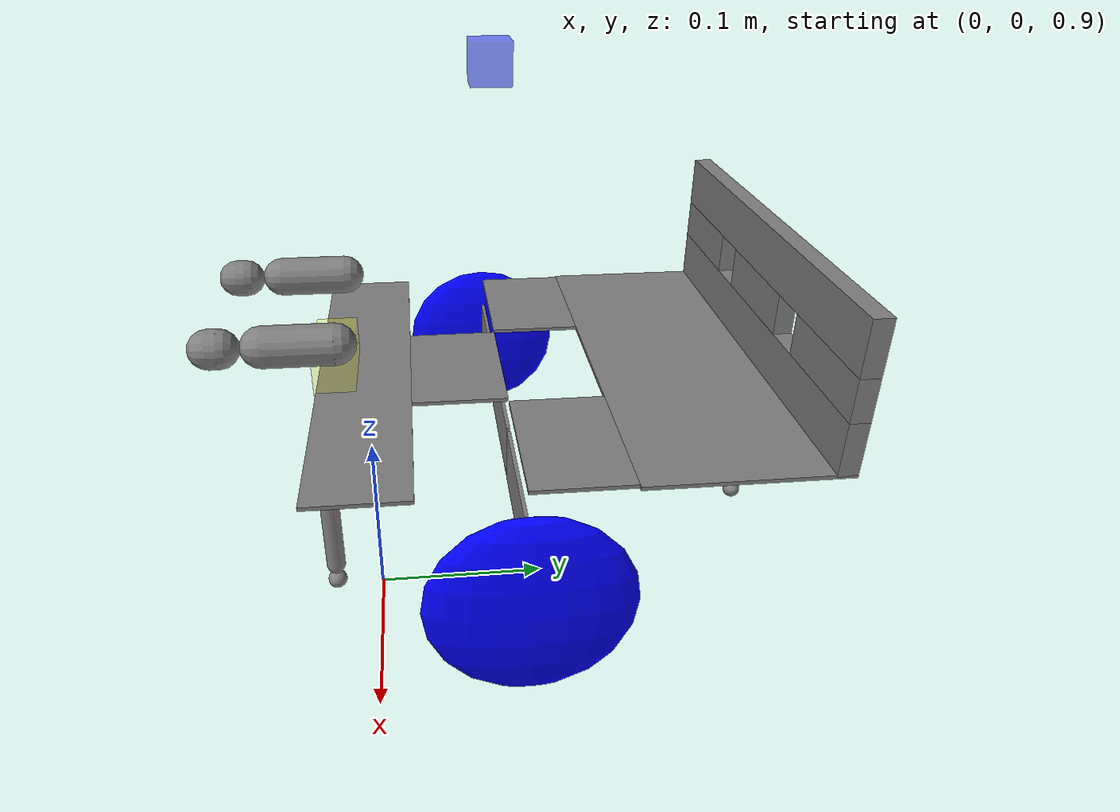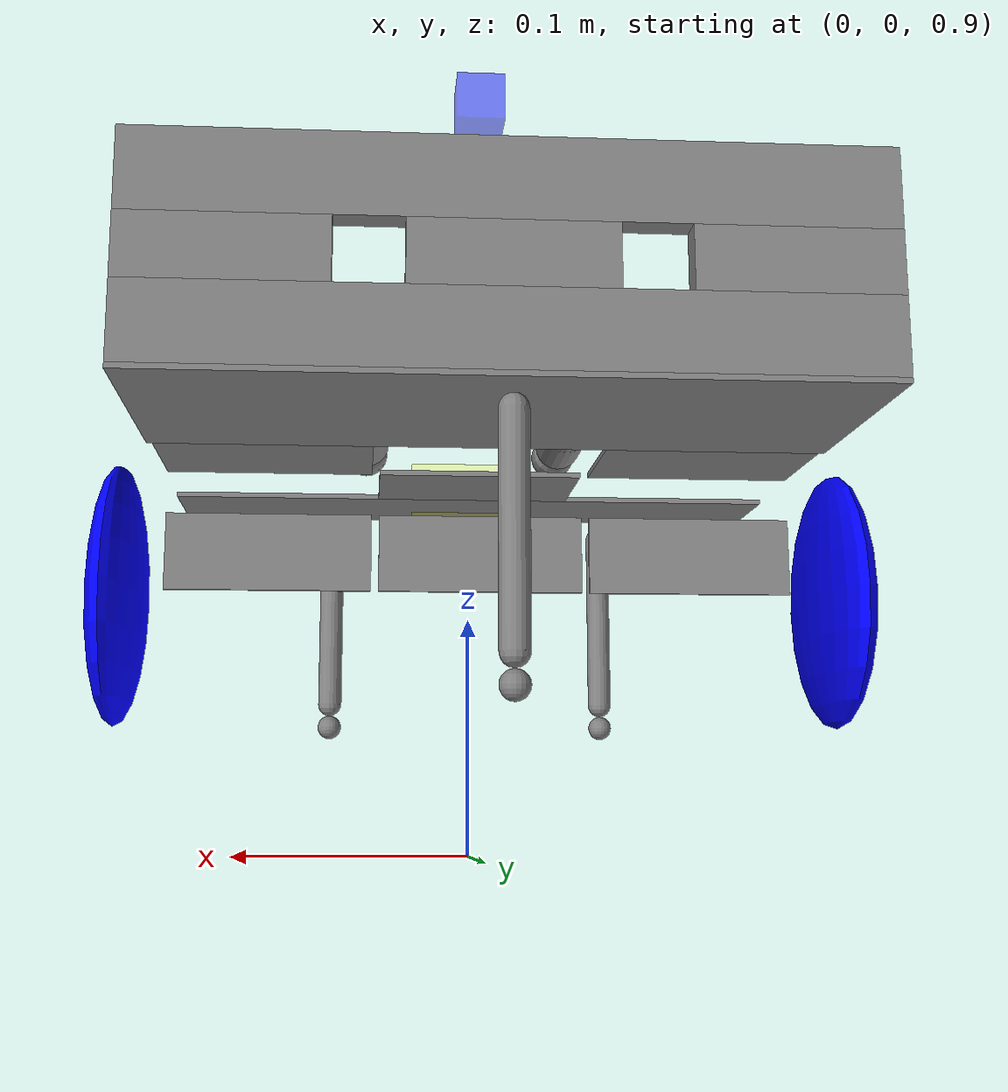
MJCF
<?xml version="1.0" ?>
<mujoco>
    <asset>
        <texture builtin="gradient" height="100" rgb1="1 1 1" rgb2="0 0 0" type="skybox" width="100"/>
        <texture builtin="flat" height="1278" mark="cross" markrgb="1 1 1" name="texgeom" random="0.01" rgb1="0.8 0.6 0.4" rgb2="0.8 0.6 0.4" type="cube" width="127"/>
        <texture builtin="checker" height="100" name="texplane" rgb1="0 0 0" rgb2="0.8 0.8 0.8" type="2d" width="100"/>
        <material name="MatPlane" reflectance="0.5" shininess="1" specular="1" texrepeat="60 60" texture="texplane"/>
        <material name="geom" texture="texgeom" texuniform="true"/>
        <mesh file="joint_socket.stl" name= "joint_socket" scale="0.001 0.001 0.001"></mesh>

    </asset>
    <visual>
        <map znear="0.055" zfar="20"/>
        <quality offsamples="8"/>
    </visual>
    <option timestep="0.0001" />

    <worldbody>

        <light cutoff="100" diffuse="1 1 1" dir="-0 0 -1.3" directional="true" exponent="1" pos="0 0 1.3" specular=".1 .1 .1"/>
        <geom conaffinity="1" condim="3" material="MatPlane" name="floor" pos="0 0 0" rgba="0.8 0.9 0.8 1" size="5 5 0.1" type="plane"/>
        <body pos="0 0 1">
            <joint type="free" name="bot_1"/>
            <geom type="box" pos="0 0 0.05" size="0.125 0.025 0.001"/>

            <body pos="0 0.07 0.21">
                <site name = "camera" type="box" pos="0 0 0" size="0.01 0.01 0.01" rgba="0 0 1 0.5"/>
                <camera euler="-90 0 0" fovy="90" name="camera_front_1" pos="0 0 0"></camera>
                <camera euler="-90 180 0" fovy="90" name="camera_back_1" pos="0 0 0"></camera>
            </body>

            <site name="contact_sensor" type="box" pos="0 -0.015 0.06" size="0.025 0.011 0.011" rgba="1 1 0 0.25"/>
            <body name="plug">
                <geom type="capsule" size="0.0105" fromto="0.0455 -0.01 0.089 0.0455 -0.045 0.089" />
                <body name="left_plug">
                    <joint name="plug_left" type="hinge" axis="0 0 1" pos="0.0455 -0.045 0.089" limited="true" range="0 90" />
                    <geom type="capsule" size="0.01" fromto="0.0455 -0.0651 0.089 0.0455 -0.07 0.089" />
                </body>
                <geom type="capsule" size="0.0105" fromto="-0.0455 -0.01 0.089 -0.0455 -0.045 0.089" />
                <body name="right_plug">
                    <joint name="plug_right" type="hinge" axis="0 0 1" pos="-0.0455 -0.045 0.089" limited="true" range="-90 0" />
                    <geom type="capsule" size="0.01" fromto="-0.0455 -0.0651 0.089 -0.0455 -0.07 0.089" />
                </body>
            </body>

            <body pos="0.06 -0.02 0 ">
                <joint name="support_fr_1" type="hinge" axis="1 0 0" pos="0 0 0.04" limited="true" range="-90 0"/>
                <geom type="capsule" size="0.005" fromto="0 0 0.04 0 0 -0.035" />
                <body>
                    <joint pos="0 0 -0.045" type="ball"/>
                    <geom type="sphere" size="0.005" pos="0 0 -0.045"/>
                </body>
            </body>
            <body pos="-0.06 -0.02 0 ">
                <joint name="support_fl_1" type="hinge" axis="1 0 0" pos="0 0 0.04" limited="true" range="-90 0"/>
                <geom type="capsule" size="0.005" fromto="0 0 0.04 0 0 -0.035" />
                <body>
                    <joint pos="0 0 -0.045" type="ball"/>
                    <geom type="sphere" size="0.005" pos="0 0 -0.045"/>
                </body>
            </body>

            <geom type="box" pos="0 0.05 0.05" size="0.04 0.025 0.001"/>
            <geom type="box" pos="0 0.075 0.0175" size="0.04 0.001 0.015"/>
            <body>
                <joint type="hinge" pos="0 0.075 0" axis="1 0 0" springdamper="1.5 0.01" limited="true" range="-90 90" />
                <geom type="box" pos="0.083 0.075 0.0175" size="0.04 0.001 0.015"/>
                <geom type="box" pos="-0.083 0.075 0.0175" size="0.04 0.001 0.015"/>
                <geom type="box" pos="0.083 0.1 0.05" size="0.04 0.025 0.001"/>
                <geom type="box" pos="-0.083 0.1 0.05" size="0.04 0.025 0.001"/>
                <geom type="box" pos="0 0.175 0.05" size="0.125 0.05 0.001"/>

                <body name="socket">
                    <geom type="box" pos="0 0.22 0.064" size="0.125 0.005 0.014"></geom>
                    <geom type="box" pos="0.091 0.22 0.089" size="0.034 0.005 0.011"></geom>
                    <geom type="box" pos="0 0.22 0.089" size="0.034 0.005 0.011"></geom>
                    <geom type="box" pos="-0.091 0.22 0.089" size="0.034 0.005 0.011"></geom>
                    <geom type="box" pos="0 0.22 0.114" size="0.125 0.005 0.014"></geom>
                </body>

                <body pos="0 0.22 0 ">
                    <joint name="support_b_1" type="hinge" axis="1 0 0" pos="0 0 0.04" limited="true" range="0 90"/>
                    <geom type="capsule" size="0.005" fromto="0 0 0.04 0 0 -0.035" />
                    <body>
                        <joint pos="0 0 -0.045" type="ball"/>
                        <geom type="sphere" size="0.005" pos="0 0 -0.045"/>
                    </body>
                </body>
            </body>
            <body>
                <joint name="RW1" type="hinge" axis="1 0 0" pos="-0.14 0.075 0"/>
                <geom type="ellipsoid" size="0.01 0.05 0.05" rgba="0 0 1 1" pos="0.14 0.075 0"/>
            </body>
            <body>
                <joint name ="LW1" type="hinge" axis="1 0 0" pos="0.14 0.075 0"/>
                <geom type="ellipsoid" size="0.01 0.05 0.05" rgba="0 0 1 1" pos="-0.14 0.075 0"/>
            </body>
        </body>
    </worldbody>
    <actuator>
        <velocity joint="LW1"/>
        <velocity joint="RW1"/>
        <motor joint="support_fr_1"/>
        <motor joint="support_fl_1"/>
        <motor joint="support_b_1"/>
        <motor joint="plug_left"/>
        <motor joint="plug_right"/>
    </actuator>
    <sensor>
        <touch site="contact_sensor"/>
    </sensor>
</mujoco>
